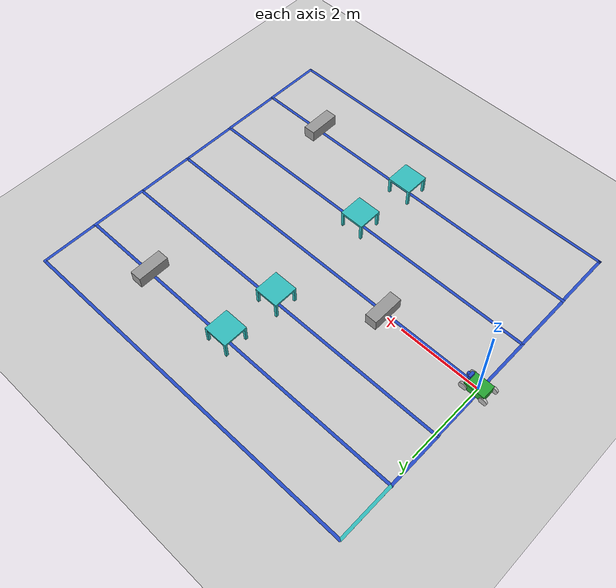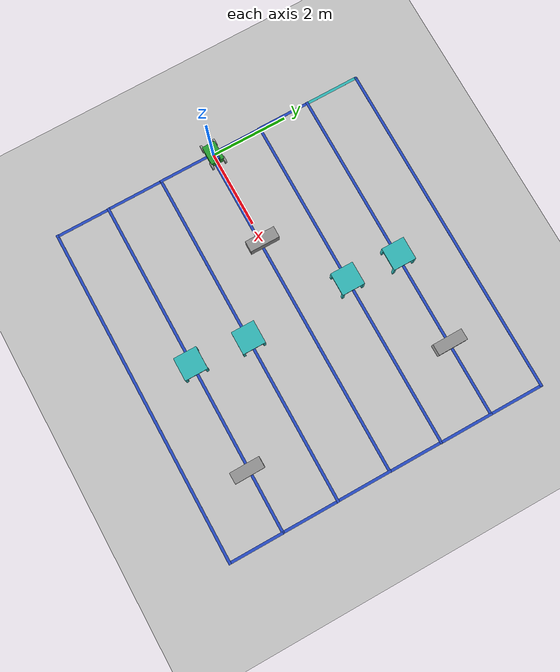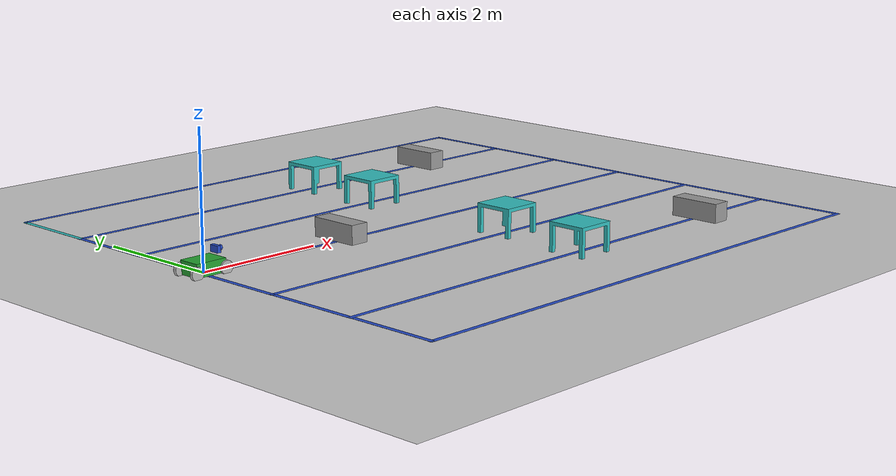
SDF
<sdf version="1.7">
 <world name="default">
  <light name="sun" type="directional">
   <pose>0 0 10 0 -0 0</pose>
   <diffuse>0.8 0.8 0.8 1</diffuse>
   <specular>0.2 0.2 0.2 1</specular>
   <attenuation>
    <range>1000</range>
    <constant>0.9</constant>
    <linear>0.01</linear>
    <quadratic>0.001</quadratic>
   </attenuation>
   <direction>-0.5 0.1 -0.9</direction>
   <spot><inner_angle>0</inner_angle><outer_angle>0</outer_angle><falloff>0</falloff></spot>
  </light>
  <model name="ground_plane">
   <static>1</static>
   <link name="link">
    <collision name="collision">
     <geometry><plane><normal>0 0 1</normal><size>100 100</size></plane></geometry>
     <surface>
      <contact><collide_bitmask>65535</collide_bitmask></contact>
      <friction><ode><mu>100</mu><mu2>50</mu2></ode></friction>
     </surface>
    </collision>
    <visual name="visual">
     <cast_shadows>0</cast_shadows>
     <geometry><plane><normal>0 0 1</normal><size>100 100</size></plane></geometry>
     <material>
      <script><uri>file://media/materials/scripts/gazebo.material</uri><name>Gazebo/Grey</name></script>
     </material>
    </visual>
   </link>
  </model>
  <gravity>0 0 -9.8</gravity>
  <magnetic_field>6e-06 2.3e-05 -4.2e-05</magnetic_field>
  <atmosphere type="adiabatic"/>
  <physics type="ode">
   <max_step_size>0.001</max_step_size>
   <real_time_factor>1</real_time_factor>
   <real_time_update_rate>1000</real_time_update_rate>
  </physics>
  <scene><ambient>0.4 0.4 0.4 1</ambient><background>0.7 0.7 0.7 1</background><shadows>1</shadows></scene>
  <spherical_coordinates>
   <surface_model>EARTH_WGS84</surface_model>
   <latitude_deg>0</latitude_deg>
   <longitude_deg>0</longitude_deg>
   <elevation>0</elevation>
   <heading_deg>0</heading_deg>
  </spherical_coordinates>
  <model name="greenguard">
   <link name="base_link">
    <inertial>
     <pose>0.002066 0 0.101653 0 -0 0</pose>
     <mass>12.1</mass>
     <inertia>
      <ixx>0.166842</ixx>
      <ixy>0</ixy>
      <ixz>-0.00495868</ixz>
      <iyy>0.300473</iyy>
      <iyz>0</iyz>
      <izz>0.379006</izz>
     </inertia>
    </inertial>
    <collision name="base_link_collision">
     <pose>0 0 0.1 0 -0 0</pose>
     <geometry><box><size>0.5 0.35 0.2</size></box></geometry>
    </collision>
    <collision name="base_link_fixed_joint_lump__camera_link_collision_1">
     <pose>0.25 0 0.3 0 -0 0</pose>
     <geometry><box><size>0.12 0.15 0.1</size></box></geometry>
    </collision>
    <visual name="base_link_visual">
     <pose>0 0 0.1 0 -0 0</pose>
     <geometry><box><size>0.5 0.35 0.2</size></box></geometry>
     <material>
      <script><name>Gazebo/Green</name><uri>file://media/materials/scripts/gazebo.material</uri></script>
     </material>
    </visual>
    <visual name="base_link_fixed_joint_lump__camera_link_visual_1">
     <pose>0.22 0 0.3 0 -0 0</pose>
     <geometry><box><size>0.06 0.15 0.1</size></box></geometry>
     <material>
      <script><name>Gazebo/Blue</name><uri>file://media/materials/scripts/gazebo.material</uri></script>
     </material>
    </visual>
    <visual name="base_link_fixed_joint_lump__camera_link_visual_2">
     <pose>0.28 0 0.3 3.14159 1.57079 3.14159</pose>
     <geometry><cylinder><length>0.06</length><radius>0.04</radius></cylinder></geometry>
     <material>
      <script><name>Gazebo/Blue</name><uri>file://media/materials/scripts/gazebo.material</uri></script>
     </material>
    </visual>
    <sensor name="guard_cam" type="depth">
     <update_rate>20</update_rate>
     <visualize>1</visualize>
     <camera name="cam">
      <horizontal_fov>1.39626</horizontal_fov>
      <image><width>640</width><height>480</height><format>B8G8R8</format></image>
      <clip><near>0.02</near><far>300</far></clip>
      <noise><type>gaussian</type><mean>0</mean><stddev>0.007</stddev></noise>
     </camera>
     <plugin name="camera_controller" filename="libgazebo_ros_camera.so">
      <frame_name>camera_link_optical</frame_name>
      <min_depth>0.1</min_depth>
      <max_depth>500</max_depth>
     </plugin>
     <pose>0.25 0 0.3 0 -0 0</pose>
    </sensor>
   </link>
   <joint name="front_left_wheel_joint" type="revolute">
    <pose relative_to="base_link">0.25 -0.175 0.066667 -1.57079 1.57079 3.14159</pose>
    <parent>base_link</parent>
    <child>front_left_wheel_link</child>
    <axis>
     <xyz>0 0 1</xyz>
     <limit><effort>100</effort><velocity>100</velocity><lower>-1e+16</lower><upper>1e+16</upper></limit>
     <dynamics><spring_reference>0</spring_reference><spring_stiffness>0</spring_stiffness></dynamics>
    </axis>
   </joint>
   <link name="front_left_wheel_link">
    <pose relative_to="front_left_wheel_joint">0 0 0 0 -0 0</pose>
    <inertial>
     <pose>0.025 0 0 3.14159 1.57079 3.14159</pose>
     <mass>1</mass>
     <inertia>
      <ixx>0.00270833</ixx>
      <ixy>0</ixy>
      <ixz>0</ixz>
      <iyy>0.00270833</iyy>
      <iyz>0</iyz>
      <izz>0.005</izz>
     </inertia>
    </inertial>
    <collision name="front_left_wheel_link_collision">
     <geometry><cylinder><length>0.05</length><radius>0.1</radius></cylinder></geometry>
    </collision>
    <visual name="front_left_wheel_link_visual">
     <geometry><cylinder><length>0.05</length><radius>0.1</radius></cylinder></geometry>
    </visual>
   </link>
   <joint name="front_right_wheel_joint" type="revolute">
    <pose relative_to="base_link">0.25 0.175 0.066667 -1.57079 1.57079 3.14159</pose>
    <parent>base_link</parent>
    <child>front_right_wheel_link</child>
    <axis>
     <xyz>0 0 1</xyz>
     <limit><effort>100</effort><velocity>100</velocity><lower>-1e+16</lower><upper>1e+16</upper></limit>
     <dynamics><spring_reference>0</spring_reference><spring_stiffness>0</spring_stiffness></dynamics>
    </axis>
   </joint>
   <link name="front_right_wheel_link">
    <pose relative_to="front_right_wheel_joint">0 0 0 0 -0 0</pose>
    <inertial>
     <pose>0.025 0 0 3.14159 1.57079 3.14159</pose>
     <mass>1</mass>
     <inertia>
      <ixx>0.00270833</ixx>
      <ixy>0</ixy>
      <ixz>0</ixz>
      <iyy>0.00270833</iyy>
      <iyz>0</iyz>
      <izz>0.005</izz>
     </inertia>
    </inertial>
    <collision name="front_right_wheel_link_collision">
     <geometry><cylinder><length>0.05</length><radius>0.1</radius></cylinder></geometry>
    </collision>
    <visual name="front_right_wheel_link_visual">
     <geometry><cylinder><length>0.05</length><radius>0.1</radius></cylinder></geometry>
    </visual>
   </link>
   <joint name="rear_left_wheel_joint" type="revolute">
    <pose relative_to="base_link">-0.25 -0.175 0.066667 -1.57079 1.57079 3.14159</pose>
    <parent>base_link</parent>
    <child>rear_left_wheel_link</child>
    <axis>
     <xyz>0 0 1</xyz>
     <limit><effort>100</effort><velocity>100</velocity><lower>-1e+16</lower><upper>1e+16</upper></limit>
     <dynamics><spring_reference>0</spring_reference><spring_stiffness>0</spring_stiffness></dynamics>
    </axis>
   </joint>
   <link name="rear_left_wheel_link">
    <pose relative_to="rear_left_wheel_joint">0 0 0 0 -0 0</pose>
    <inertial>
     <pose>0.025 0 0 3.14159 1.57079 3.14159</pose>
     <mass>1</mass>
     <inertia>
      <ixx>0.00270833</ixx>
      <ixy>0</ixy>
      <ixz>0</ixz>
      <iyy>0.00270833</iyy>
      <iyz>0</iyz>
      <izz>0.005</izz>
     </inertia>
    </inertial>
    <collision name="rear_left_wheel_link_collision">
     <geometry><cylinder><length>0.05</length><radius>0.1</radius></cylinder></geometry>
    </collision>
    <visual name="rear_left_wheel_link_visual">
     <geometry><cylinder><length>0.05</length><radius>0.1</radius></cylinder></geometry>
    </visual>
   </link>
   <joint name="rear_right_wheel_joint" type="revolute">
    <pose relative_to="base_link">-0.25 0.175 0.066667 -1.57079 1.57079 3.14159</pose>
    <parent>base_link</parent>
    <child>rear_right_wheel_link</child>
    <axis>
     <xyz>0 0 1</xyz>
     <limit><effort>100</effort><velocity>100</velocity><lower>-1e+16</lower><upper>1e+16</upper></limit>
     <dynamics><spring_reference>0</spring_reference><spring_stiffness>0</spring_stiffness></dynamics>
    </axis>
   </joint>
   <link name="rear_right_wheel_link">
    <pose relative_to="rear_right_wheel_joint">0 0 0 0 -0 0</pose>
    <inertial>
     <pose>0.025 0 0 3.14159 1.57079 3.14159</pose>
     <mass>1</mass>
     <inertia>
      <ixx>0.00270833</ixx>
      <ixy>0</ixy>
      <ixz>0</ixz>
      <iyy>0.00270833</iyy>
      <iyz>0</iyz>
      <izz>0.005</izz>
     </inertia>
    </inertial>
    <collision name="rear_right_wheel_link_collision">
     <geometry><cylinder><length>0.05</length><radius>0.1</radius></cylinder></geometry>
    </collision>
    <visual name="rear_right_wheel_link_visual">
     <geometry><cylinder><length>0.05</length><radius>0.1</radius></cylinder></geometry>
    </visual>
   </link>
   <plugin name="gazebo_ros_joint_state_publisher" filename="libgazebo_ros_joint_state_publisher.so">
    <update_rate>10</update_rate>
    <joint_name>front_right_wheel_joint</joint_name>
    <joint_name>front_left_wheel_joint</joint_name>
    <joint_name>rear_right_wheel_joint</joint_name>
    <joint_name>rear_left_wheel_joint</joint_name>
   </plugin>
   <plugin name="gazebo_ros_joint_pose_trajectory" filename="libgazebo_ros_joint_pose_trajectory.so">
    <update_rate>10</update_rate>
   </plugin>
   <static>0</static>
   <plugin name="skid_steer_drive" filename="libgazebo_ros_diff_drive.so">
    <ros><namespace>/greenguard</namespace></ros>
    <num_wheel_pairs>2</num_wheel_pairs>
    <left_joint>front_left_wheel_joint</left_joint>
    <right_joint>front_right_wheel_joint</right_joint>
    <left_joint>rear_left_wheel_joint</left_joint>
    <right_joint>rear_right_wheel_joint</right_joint>
    <wheel_separation>0.4</wheel_separation>
    <wheel_separation>0.4</wheel_separation>
    <wheel_diameter>0.2</wheel_diameter>
    <wheel_diameter>0.2</wheel_diameter>
    <max_wheel_torque>10</max_wheel_torque>
    <max_wheel_acceleration>1.0</max_wheel_acceleration>
    <publish_odom>1</publish_odom>
    <publish_odom_tf>1</publish_odom_tf>
    <publish_wheel_tf>1</publish_wheel_tf>
    <odometry_frame>odom</odometry_frame>
    <robot_base_frame>base_link</robot_base_frame>
   </plugin>
  </model>
  <model name="cizgi">
   <pose>4.20591 -0.108119 0 0 -0 0</pose>
   <link name="Wall_21">
    <collision name="Wall_21_Collision">
     <geometry><box><size>8.92 0.07 0.001</size></box></geometry>
     <pose>0 0 0.0005 0 -0 0</pose>
    </collision>
    <visual name="Wall_21_Visual">
     <pose>0 0 0.0005 0 -0 0</pose>
     <geometry><box><size>8.92 0.07 0.001</size></box></geometry>
     <material>
      <script><uri>file://media/materials/scripts/gazebo.material</uri><name>Gazebo/Blue</name></script>
      <ambient>1 1 1 1</ambient>
     </material>
     <meta><layer>0</layer></meta>
    </visual>
    <pose>0.1685 0.049 0 0 -0 0</pose>
   </link>
   <link name="Wall_23">
    <collision name="Wall_23_Collision">
     <geometry><box><size>1.42 0.07 0.001</size></box></geometry>
     <pose>0 0 0.0005 0 -0 0</pose>
    </collision>
    <visual name="Wall_23_Visual">
     <pose>0 0 0.0005 0 -0 0</pose>
     <geometry><box><size>1.42 0.07 0.001</size></box></geometry>
     <material>
      <script><uri>file://media/materials/scripts/gazebo.material</uri><name>Gazebo/Blue</name></script>
      <ambient>1 1 1 1</ambient>
     </material>
     <meta><layer>0</layer></meta>
    </visual>
    <pose>4.6125 2.135 0 0 -0 1.5708</pose>
   </link>
   <link name="Wall_25">
    <collision name="Wall_25_Collision">
     <geometry><box><size>1.42 0.07 0.001</size></box></geometry>
     <pose>0 0 0.0005 0 -0 0</pose>
    </collision>
    <visual name="Wall_25_Visual">
     <pose>0 0 0.0005 0 -0 0</pose>
     <geometry><box><size>1.42 0.07 0.001</size></box></geometry>
     <material>
      <script><uri>file://media/materials/scripts/gazebo.material</uri><name>Gazebo/Blue</name></script>
      <ambient>1 1 1 1</ambient>
     </material>
     <meta><layer>0</layer></meta>
    </visual>
    <pose>4.60833 -2.05702 0 0 -0 -1.5708</pose>
   </link>
   <link name="Wall_27">
    <collision name="Wall_27_Collision">
     <geometry><box><size>1.42 0.07 0.001</size></box></geometry>
     <pose>0 0 0.0005 0 -0 0</pose>
    </collision>
    <visual name="Wall_27_Visual">
     <pose>0 0 0.0005 0 -0 0</pose>
     <geometry><box><size>1.42 0.07 0.001</size></box></geometry>
     <material>
      <script><uri>file://media/materials/scripts/gazebo.material</uri><name>Gazebo/Blue</name></script>
      <ambient>1 1 1 1</ambient>
     </material>
     <meta><layer>0</layer></meta>
    </visual>
    <pose>4.61233 -3.50883 0 0 -0 -1.5708</pose>
   </link>
   <link name="Wall_29">
    <collision name="Wall_29_Collision">
     <geometry><box><size>1.42 0.07 0.001</size></box></geometry>
     <pose>0 0 0.0005 0 -0 0</pose>
    </collision>
    <visual name="Wall_29_Visual">
     <pose>0 0 0.0005 0 -0 0</pose>
     <geometry><box><size>1.42 0.07 0.001</size></box></geometry>
     <material>
      <script><uri>file://media/materials/scripts/gazebo.material</uri><name>Gazebo/Blue</name></script>
      <ambient>1 1 1 1</ambient>
     </material>
     <meta><layer>0</layer></meta>
    </visual>
    <pose>4.6125 3.527 0 0 -0 -1.5708</pose>
   </link>
   <link name="Wall_31">
    <collision name="Wall_31_Collision">
     <geometry><box><size>1.42 0.07 0.001</size></box></geometry>
     <pose>0 0 0.0005 0 -0 0</pose>
    </collision>
    <visual name="Wall_31_Visual">
     <pose>0 0 0.0005 0 -0 0</pose>
     <geometry><box><size>1.42 0.07 0.001</size></box></geometry>
     <material>
      <script><uri>file://media/materials/scripts/gazebo.material</uri><name>Gazebo/Blue</name></script>
      <ambient>1 1 1 1</ambient>
     </material>
     <meta><layer>0</layer></meta>
    </visual>
    <pose>4.6075 0.77 0 0 -0 -1.5708</pose>
   </link>
   <link name="Wall_33">
    <collision name="Wall_33_Collision">
     <geometry><box><size>1.42 0.07 0.001</size></box></geometry>
     <pose>0 0 0.0005 0 -0 0</pose>
    </collision>
    <visual name="Wall_33_Visual">
     <pose>0 0 0.0005 0 -0 0</pose>
     <geometry><box><size>1.42 0.07 0.001</size></box></geometry>
     <material>
      <script><uri>file://media/materials/scripts/gazebo.material</uri><name>Gazebo/Blue</name></script>
      <ambient>1 1 1 1</ambient>
     </material>
     <meta><layer>0</layer></meta>
    </visual>
    <pose>4.6035 -0.621 0 0 -0 -1.5708</pose>
   </link>
   <link name="Wall_35">
    <collision name="Wall_35_Collision">
     <geometry><box><size>8.92 0.07 0.001</size></box></geometry>
     <pose>0 0 0.0005 0 -0 0</pose>
    </collision>
    <visual name="Wall_35_Visual">
     <pose>0 0 0.0005 0 -0 0</pose>
     <geometry><box><size>8.92 0.07 0.001</size></box></geometry>
     <material>
      <script><uri>file://media/materials/scripts/gazebo.material</uri><name>Gazebo/Blue</name></script>
      <ambient>1 1 1 1</ambient>
     </material>
     <meta><layer>0</layer></meta>
    </visual>
    <pose>0.1775 1.445 0 0 -0 0</pose>
   </link>
   <link name="Wall_37">
    <collision name="Wall_37_Collision">
     <geometry><box><size>8.92 0.07 0.001</size></box></geometry>
     <pose>0 0 0.0005 0 -0 0</pose>
    </collision>
    <visual name="Wall_37_Visual">
     <pose>0 0 0.0005 0 -0 0</pose>
     <geometry><box><size>8.92 0.07 0.001</size></box></geometry>
     <material>
      <script><uri>file://media/materials/scripts/gazebo.material</uri><name>Gazebo/Blue</name></script>
      <ambient>1 1 1 1</ambient>
     </material>
     <meta><layer>0</layer></meta>
    </visual>
    <pose>0.1805 -1.341 0 0 -0 0</pose>
   </link>
   <link name="Wall_39">
    <collision name="Wall_39_Collision">
     <geometry><box><size>8.92 0.07 0.001</size></box></geometry>
     <pose>0 0 0.0005 0 -0 0</pose>
    </collision>
    <visual name="Wall_39_Visual">
     <pose>0 0 0.0005 0 -0 0</pose>
     <geometry><box><size>8.92 0.07 0.001</size></box></geometry>
     <material>
      <script><uri>file://media/materials/scripts/gazebo.material</uri><name>Gazebo/Blue</name></script>
      <ambient>1 1 1 1</ambient>
     </material>
     <meta><layer>0</layer></meta>
    </visual>
    <pose>0.187168 -2.80422 0 0 -0 0</pose>
   </link>
   <link name="Wall_41">
    <collision name="Wall_41_Collision">
     <geometry><box><size>8.92 0.07 0.001</size></box></geometry>
     <pose>0 0 0.0005 0 -0 0</pose>
    </collision>
    <visual name="Wall_41_Visual">
     <pose>0 0 0.0005 0 -0 0</pose>
     <geometry><box><size>8.92 0.07 0.001</size></box></geometry>
     <material>
      <script><uri>file://media/materials/scripts/gazebo.material</uri><name>Gazebo/Blue</name></script>
      <ambient>1 1 1 1</ambient>
     </material>
     <meta><layer>0</layer></meta>
    </visual>
    <pose>0.1875 -4.202 0 0 -0 0</pose>
   </link>
   <link name="Wall_43">
    <collision name="Wall_43_Collision">
     <geometry><box><size>8.92 0.07 0.001</size></box></geometry>
     <pose>0 0 0.0005 0 -0 0</pose>
    </collision>
    <visual name="Wall_43_Visual">
     <pose>0 0 0.0005 0 -0 0</pose>
     <geometry><box><size>8.92 0.07 0.001</size></box></geometry>
     <material>
      <script><uri>file://media/materials/scripts/gazebo.material</uri><name>Gazebo/Blue</name></script>
      <ambient>1 1 1 1</ambient>
     </material>
     <meta><layer>0</layer></meta>
    </visual>
    <pose>0.1715 4.202 0 0 -0 0</pose>
   </link>
   <link name="Wall_45">
    <collision name="Wall_45_Collision">
     <geometry><box><size>8.92 0.07 0.001</size></box></geometry>
     <pose>0 0 0.0005 0 -0 0</pose>
    </collision>
    <visual name="Wall_45_Visual">
     <pose>0 0 0.0005 0 -0 0</pose>
     <geometry><box><size>8.92 0.07 0.001</size></box></geometry>
     <material>
      <script><uri>file://media/materials/scripts/gazebo.material</uri><name>Gazebo/Blue</name></script>
      <ambient>1 1 1 1</ambient>
     </material>
     <meta><layer>0</layer></meta>
    </visual>
    <pose>0.1505 2.804 0 0 -0 0</pose>
   </link>
   <link name="Wall_47">
    <collision name="Wall_47_Collision">
     <geometry><box><size>1.42 0.07 0.001</size></box></geometry>
     <pose>0 0 0.0005 0 -0 0</pose>
    </collision>
    <visual name="Wall_47_Visual">
     <pose>0 0 0.0005 0 -0 0</pose>
     <geometry><box><size>1.42 0.07 0.001</size></box></geometry>
     <material>
      <script><uri>file://media/materials/scripts/gazebo.material</uri><name>Gazebo/Blue</name></script>
      <ambient>1 1 1 1</ambient>
     </material>
     <meta><layer>0</layer></meta>
    </visual>
    <pose>-4.23105 -3.508 0 0 -0 1.5708</pose>
   </link>
   <link name="Wall_49">
    <collision name="Wall_49_Collision">
     <geometry><box><size>1.42 0.07 0.001</size></box></geometry>
     <pose>0 0 0.0005 0 -0 0</pose>
    </collision>
    <visual name="Wall_49_Visual">
     <pose>0 0 0.0005 0 -0 0</pose>
     <geometry><box><size>1.42 0.07 0.001</size></box></geometry>
     <material>
      <script><uri>file://media/materials/scripts/gazebo.material</uri><name>Gazebo/Blue</name></script>
      <ambient>1 1 1 1</ambient>
     </material>
     <meta><layer>0</layer></meta>
    </visual>
    <pose>-4.23971 -2.0589 0 0 -0 1.5708</pose>
   </link>
   <link name="Wall_51">
    <collision name="Wall_51_Collision">
     <geometry><box><size>1.42 0.07 0.001</size></box></geometry>
     <pose>0 0 0.0005 0 -0 0</pose>
    </collision>
    <visual name="Wall_51_Visual">
     <pose>0 0 0.0005 0 -0 0</pose>
     <geometry><box><size>1.42 0.07 0.001</size></box></geometry>
     <material>
      <script><uri>file://media/materials/scripts/gazebo.material</uri><name>Gazebo/Blue</name></script>
      <ambient>1 1 1 1</ambient>
     </material>
     <meta><layer>0</layer></meta>
    </visual>
    <pose>-4.2455 -0.659 0 0 -0 1.5708</pose>
   </link>
   <link name="Wall_53">
    <collision name="Wall_53_Collision">
     <geometry><box><size>1.42 0.07 0.001</size></box></geometry>
     <pose>0 0 0.0005 0 -0 0</pose>
    </collision>
    <visual name="Wall_53_Visual">
     <pose>0 0 0.0005 0 -0 0</pose>
     <geometry><box><size>1.42 0.07 0.001</size></box></geometry>
     <material>
      <script><uri>file://media/materials/scripts/gazebo.material</uri><name>Gazebo/Blue</name></script>
      <ambient>1 1 1 1</ambient>
     </material>
     <meta><layer>0</layer></meta>
    </visual>
    <pose>-4.2565 0.749 0 0 -0 1.5708</pose>
   </link>
   <link name="Wall_55">
    <collision name="Wall_55_Collision">
     <geometry><box><size>1.42031 0.07 0.001</size></box></geometry>
     <pose>0 0 0.0005 0 -0 0</pose>
    </collision>
    <visual name="Wall_55_Visual">
     <pose>0 0 0.0005 0 -0 0</pose>
     <geometry><box><size>1.42031 0.07 0.001</size></box></geometry>
     <material>
      <script><uri>file://media/materials/scripts/gazebo.material</uri><name>Gazebo/Blue</name></script>
      <ambient>1 1 1 1</ambient>
     </material>
     <meta><layer>0</layer></meta>
    </visual>
    <pose>-4.2685 2.097 0 0 -0 1.5708</pose>
   </link>
   <link name="Wall_57">
    <collision name="Wall_57_Collision">
     <geometry><box><size>1.42 0.07 0.001</size></box></geometry>
     <pose>0 0 0.0005 0 -0 0</pose>
    </collision>
    <visual name="Wall_57_Visual">
     <pose>0 0 0.0005 0 -0 0</pose>
     <geometry><box><size>1.42 0.07 0.001</size></box></geometry>
     <material>
      <script><uri>file://media/materials/scripts/gazebo.material</uri><name>Gazebo/Turquoise</name></script>
      <ambient>1 1 1 1</ambient>
     </material>
     <meta><layer>0</layer></meta>
    </visual>
    <pose>-4.2675 3.505 0 0 -0 1.5708</pose>
   </link>
   <static>1</static>
  </model>
  <model name="table">
   <link name="link_0">
    <inertial>
     <mass>1</mass>
     <inertia>
      <ixx>0.166667</ixx>
      <ixy>0</ixy>
      <ixz>0</ixz>
      <iyy>0.166667</iyy>
      <iyz>0</iyz>
      <izz>0.166667</izz>
     </inertia>
    </inertial>
    <pose>5e-06 3e-06 0 0 -0 0</pose>
    <visual name="visual">
     <geometry>
      <mesh>
       <uri>/home/neraiv/galactic_ws/src/greenguard/greenguard_description/worlds/table.stl</uri>
       <scale>0.6 0.6 0.6</scale>
      </mesh>
     </geometry>
     <material>
      <lighting>1</lighting>
      <script><uri>file://media/materials/scripts/gazebo.material</uri><name>Gazebo/Turquoise</name></script>
      <shader type="pixel"/>
     </material>
    </visual>
    <collision name="collision">
     <geometry>
      <mesh>
       <uri>/home/neraiv/galactic_ws/src/greenguard/greenguard_description/worlds/table.stl</uri>
       <scale>0.6 0.6 0.6</scale>
      </mesh>
     </geometry>
     <surface>
      <friction>
       <ode><mu>1</mu><mu2>1</mu2><fdir1>0 0 0</fdir1><slip1>0</slip1><slip2>0</slip2></ode>
       <torsional>
        <coefficient>1</coefficient>
        <patch_radius>0</patch_radius>
        <surface_radius>0</surface_radius>
        <use_patch_radius>1</use_patch_radius>
        <ode><slip>0</slip></ode>
       </torsional>
      </friction>
      <bounce><restitution_coefficient>0</restitution_coefficient><threshold>1e+06</threshold></bounce>
      <contact>
       <collide_without_contact>0</collide_without_contact>
       <collide_without_contact_bitmask>1</collide_without_contact_bitmask>
       <collide_bitmask>1</collide_bitmask>
       <ode>
        <soft_cfm>0</soft_cfm>
        <soft_erp>0.2</soft_erp>
        <kp>1e+13</kp>
        <kd>1</kd>
        <max_vel>0.01</max_vel>
        <min_depth>0</min_depth>
       </ode>
       <bullet>
        <split_impulse>1</split_impulse>
        <split_impulse_penetration_threshold>-0.01</split_impulse_penetration_threshold>
        <soft_cfm>0</soft_cfm>
        <soft_erp>0.2</soft_erp>
        <kp>1e+13</kp>
        <kd>1</kd>
       </bullet>
      </contact>
     </surface>
    </collision>
   </link>
   <static>0</static>
   <pose>4.46328 2.65883 -2e-06 -1.4e-05 8e-06 -1e-06</pose>
  </model>
  <model name="table_0">
   <link name="link_0">
    <inertial>
     <mass>1</mass>
     <inertia>
      <ixx>0.166667</ixx>
      <ixy>0</ixy>
      <ixz>0</ixz>
      <iyy>0.166667</iyy>
      <iyz>0</iyz>
      <izz>0.166667</izz>
     </inertia>
    </inertial>
    <pose>5e-06 3e-06 0 0 -0 0</pose>
    <visual name="visual">
     <geometry>
      <mesh>
       <uri>/home/neraiv/galactic_ws/src/greenguard/greenguard_description/worlds/table.stl</uri>
       <scale>0.6 0.6 0.6</scale>
      </mesh>
     </geometry>
     <material>
      <lighting>1</lighting>
      <script><uri>file://media/materials/scripts/gazebo.material</uri><name>Gazebo/Turquoise</name></script>
      <shader type="pixel"/>
     </material>
    </visual>
    <collision name="collision">
     <geometry>
      <mesh>
       <uri>/home/neraiv/galactic_ws/src/greenguard/greenguard_description/worlds/table.stl</uri>
       <scale>0.6 0.6 0.6</scale>
      </mesh>
     </geometry>
     <surface>
      <friction>
       <ode><mu>1</mu><mu2>1</mu2><fdir1>0 0 0</fdir1><slip1>0</slip1><slip2>0</slip2></ode>
       <torsional>
        <coefficient>1</coefficient>
        <patch_radius>0</patch_radius>
        <surface_radius>0</surface_radius>
        <use_patch_radius>1</use_patch_radius>
        <ode><slip>0</slip></ode>
       </torsional>
      </friction>
      <bounce><restitution_coefficient>0</restitution_coefficient><threshold>1e+06</threshold></bounce>
      <contact>
       <collide_without_contact>0</collide_without_contact>
       <collide_without_contact_bitmask>1</collide_without_contact_bitmask>
       <collide_bitmask>1</collide_bitmask>
       <ode>
        <soft_cfm>0</soft_cfm>
        <soft_erp>0.2</soft_erp>
        <kp>1e+13</kp>
        <kd>1</kd>
        <max_vel>0.01</max_vel>
        <min_depth>0</min_depth>
       </ode>
       <bullet>
        <split_impulse>1</split_impulse>
        <split_impulse_penetration_threshold>-0.01</split_impulse_penetration_threshold>
        <soft_cfm>0</soft_cfm>
        <soft_erp>0.2</soft_erp>
        <kp>1e+13</kp>
        <kd>1</kd>
       </bullet>
      </contact>
     </surface>
    </collision>
   </link>
   <static>0</static>
   <pose>4.39947 1.29161 1.2e-05 2.1e-05 1.4e-05 -1e-06</pose>
  </model>
  <model name="table_1">
   <link name="link_0">
    <inertial>
     <mass>1</mass>
     <inertia>
      <ixx>0.166667</ixx>
      <ixy>0</ixy>
      <ixz>0</ixz>
      <iyy>0.166667</iyy>
      <iyz>0</iyz>
      <izz>0.166667</izz>
     </inertia>
    </inertial>
    <pose>5e-06 3e-06 0 0 -0 0</pose>
    <visual name="visual">
     <geometry>
      <mesh>
       <uri>/home/neraiv/galactic_ws/src/greenguard/greenguard_description/worlds/table.stl</uri>
       <scale>0.6 0.6 0.6</scale>
      </mesh>
     </geometry>
     <material>
      <lighting>1</lighting>
      <script><uri>file://media/materials/scripts/gazebo.material</uri><name>Gazebo/Turquoise</name></script>
      <shader type="pixel"/>
     </material>
    </visual>
    <collision name="collision">
     <geometry>
      <mesh>
       <uri>/home/neraiv/galactic_ws/src/greenguard/greenguard_description/worlds/table.stl</uri>
       <scale>0.6 0.6 0.6</scale>
      </mesh>
     </geometry>
     <surface>
      <friction>
       <ode><mu>1</mu><mu2>1</mu2><fdir1>0 0 0</fdir1><slip1>0</slip1><slip2>0</slip2></ode>
       <torsional>
        <coefficient>1</coefficient>
        <patch_radius>0</patch_radius>
        <surface_radius>0</surface_radius>
        <use_patch_radius>1</use_patch_radius>
        <ode><slip>0</slip></ode>
       </torsional>
      </friction>
      <bounce><restitution_coefficient>0</restitution_coefficient><threshold>1e+06</threshold></bounce>
      <contact>
       <collide_without_contact>0</collide_without_contact>
       <collide_without_contact_bitmask>1</collide_without_contact_bitmask>
       <collide_bitmask>1</collide_bitmask>
       <ode>
        <soft_cfm>0</soft_cfm>
        <soft_erp>0.2</soft_erp>
        <kp>1e+13</kp>
        <kd>1</kd>
        <max_vel>0.01</max_vel>
        <min_depth>0</min_depth>
       </ode>
       <bullet>
        <split_impulse>1</split_impulse>
        <split_impulse_penetration_threshold>-0.01</split_impulse_penetration_threshold>
        <soft_cfm>0</soft_cfm>
        <soft_erp>0.2</soft_erp>
        <kp>1e+13</kp>
        <kd>1</kd>
       </bullet>
      </contact>
     </surface>
    </collision>
   </link>
   <static>0</static>
   <pose>4.49247 -1.44264 1.2e-05 2.1e-05 1.4e-05 -1e-06</pose>
  </model>
  <model name="table_2">
   <link name="link_0">
    <inertial>
     <mass>1</mass>
     <inertia>
      <ixx>0.166667</ixx>
      <ixy>0</ixy>
      <ixz>0</ixz>
      <iyy>0.166667</iyy>
      <iyz>0</iyz>
      <izz>0.166667</izz>
     </inertia>
    </inertial>
    <pose>5e-06 3e-06 0 0 -0 0</pose>
    <visual name="visual">
     <geometry>
      <mesh>
       <uri>/home/neraiv/galactic_ws/src/greenguard/greenguard_description/worlds/table.stl</uri>
       <scale>0.6 0.6 0.6</scale>
      </mesh>
     </geometry>
     <material>
      <lighting>1</lighting>
      <script><uri>file://media/materials/scripts/gazebo.material</uri><name>Gazebo/Turquoise</name></script>
      <shader type="pixel"/>
     </material>
    </visual>
    <collision name="collision">
     <geometry>
      <mesh>
       <uri>/home/neraiv/galactic_ws/src/greenguard/greenguard_description/worlds/table.stl</uri>
       <scale>0.6 0.6 0.6</scale>
      </mesh>
     </geometry>
     <surface>
      <friction>
       <ode><mu>1</mu><mu2>1</mu2><fdir1>0 0 0</fdir1><slip1>0</slip1><slip2>0</slip2></ode>
       <torsional>
        <coefficient>1</coefficient>
        <patch_radius>0</patch_radius>
        <surface_radius>0</surface_radius>
        <use_patch_radius>1</use_patch_radius>
        <ode><slip>0</slip></ode>
       </torsional>
      </friction>
      <bounce><restitution_coefficient>0</restitution_coefficient><threshold>1e+06</threshold></bounce>
      <contact>
       <collide_without_contact>0</collide_without_contact>
       <collide_without_contact_bitmask>1</collide_without_contact_bitmask>
       <collide_bitmask>1</collide_bitmask>
       <ode>
        <soft_cfm>0</soft_cfm>
        <soft_erp>0.2</soft_erp>
        <kp>1e+13</kp>
        <kd>1</kd>
        <max_vel>0.01</max_vel>
        <min_depth>0</min_depth>
       </ode>
       <bullet>
        <split_impulse>1</split_impulse>
        <split_impulse_penetration_threshold>-0.01</split_impulse_penetration_threshold>
        <soft_cfm>0</soft_cfm>
        <soft_erp>0.2</soft_erp>
        <kp>1e+13</kp>
        <kd>1</kd>
       </bullet>
      </contact>
     </surface>
    </collision>
   </link>
   <static>0</static>
   <pose>4.37712 -2.91733 1.2e-05 2.1e-05 1.4e-05 0</pose>
  </model>
  <model name="engel">
   <link name="link_0">
    <inertial>
     <mass>0.0664996</mass>
     <inertia>
      <ixx>0.00384233</ixx>
      <ixy>0</ixy>
      <ixz>0</ixz>
      <iyy>0.000944879</iyy>
      <iyz>0</iyz>
      <izz>0.00384725</izz>
     </inertia>
    </inertial>
    <pose>3e-06 -4e-06 0 0 -0 0</pose>
    <visual name="visual">
     <geometry><box><size>0.29274 0.780095 0.29122</size></box></geometry>
     <material>
      <lighting>1</lighting>
      <script><uri>file://media/materials/scripts/gazebo.material</uri><name>Gazebo/Grey</name></script>
      <shader type="pixel"/>
     </material>
    </visual>
    <collision name="collision">
     <geometry><box><size>0.29274 0.780095 0.29122</size></box></geometry>
     <surface>
      <friction>
       <ode><mu>1</mu><mu2>1</mu2><fdir1>0 0 0</fdir1><slip1>0</slip1><slip2>0</slip2></ode>
       <torsional>
        <coefficient>1</coefficient>
        <patch_radius>0</patch_radius>
        <surface_radius>0</surface_radius>
        <use_patch_radius>1</use_patch_radius>
        <ode><slip>0</slip></ode>
       </torsional>
      </friction>
      <bounce><restitution_coefficient>0</restitution_coefficient><threshold>1e+06</threshold></bounce>
      <contact>
       <collide_without_contact>0</collide_without_contact>
       <collide_without_contact_bitmask>1</collide_without_contact_bitmask>
       <collide_bitmask>1</collide_bitmask>
       <ode>
        <soft_cfm>0</soft_cfm>
        <soft_erp>0.2</soft_erp>
        <kp>1e+13</kp>
        <kd>1</kd>
        <max_vel>0.01</max_vel>
        <min_depth>0</min_depth>
       </ode>
       <bullet>
        <split_impulse>1</split_impulse>
        <split_impulse_penetration_threshold>-0.01</split_impulse_penetration_threshold>
        <soft_cfm>0</soft_cfm>
        <soft_erp>0.2</soft_erp>
        <kp>1e+13</kp>
        <kd>1</kd>
       </bullet>
      </contact>
     </surface>
    </collision>
   </link>
   <static>0</static>
   <pose>2.53125 -0.001995 0.146555 -0.002427 -1.9e-05 -0.003157</pose>
  </model>
  <model name="engel_0">
   <link name="link_0">
    <inertial>
     <mass>0.0664996</mass>
     <inertia>
      <ixx>0.00384233</ixx>
      <ixy>0</ixy>
      <ixz>0</ixz>
      <iyy>0.000944879</iyy>
      <iyz>0</iyz>
      <izz>0.00384725</izz>
     </inertia>
    </inertial>
    <pose>3e-06 -4e-06 0 0 -0 0</pose>
    <visual name="visual">
     <geometry><box><size>0.29274 0.780095 0.29122</size></box></geometry>
     <material>
      <lighting>1</lighting>
      <script><uri>file://media/materials/scripts/gazebo.material</uri><name>Gazebo/Grey</name></script>
      <shader type="pixel"/>
     </material>
    </visual>
    <collision name="collision">
     <geometry><box><size>0.29274 0.780095 0.29122</size></box></geometry>
     <surface>
      <friction>
       <ode><mu>1</mu><mu2>1</mu2><fdir1>0 0 0</fdir1><slip1>0</slip1><slip2>0</slip2></ode>
       <torsional>
        <coefficient>1</coefficient>
        <patch_radius>0</patch_radius>
        <surface_radius>0</surface_radius>
        <use_patch_radius>1</use_patch_radius>
        <ode><slip>0</slip></ode>
       </torsional>
      </friction>
      <bounce><restitution_coefficient>0</restitution_coefficient><threshold>1e+06</threshold></bounce>
      <contact>
       <collide_without_contact>0</collide_without_contact>
       <collide_without_contact_bitmask>1</collide_without_contact_bitmask>
       <collide_bitmask>1</collide_bitmask>
       <ode>
        <soft_cfm>0</soft_cfm>
        <soft_erp>0.2</soft_erp>
        <kp>1e+13</kp>
        <kd>1</kd>
        <max_vel>0.01</max_vel>
        <min_depth>0</min_depth>
       </ode>
       <bullet>
        <split_impulse>1</split_impulse>
        <split_impulse_penetration_threshold>-0.01</split_impulse_penetration_threshold>
        <soft_cfm>0</soft_cfm>
        <soft_erp>0.2</soft_erp>
        <kp>1e+13</kp>
        <kd>1</kd>
       </bullet>
      </contact>
     </surface>
    </collision>
   </link>
   <static>0</static>
   <pose>6.88278 2.67869 0.146609 8e-05 -1.8e-05 0.006821</pose>
  </model>
  <model name="engel_1">
   <link name="link_0">
    <inertial>
     <mass>0.0664996</mass>
     <inertia>
      <ixx>0.00384233</ixx>
      <ixy>0</ixy>
      <ixz>0</ixz>
      <iyy>0.000944879</iyy>
      <iyz>0</iyz>
      <izz>0.00384725</izz>
     </inertia>
    </inertial>
    <pose>3e-06 -4e-06 0 0 -0 0</pose>
    <visual name="visual">
     <geometry><box><size>0.29274 0.780095 0.29122</size></box></geometry>
     <material>
      <lighting>1</lighting>
      <script><uri>file://media/materials/scripts/gazebo.material</uri><name>Gazebo/Grey</name></script>
      <shader type="pixel"/>
     </material>
    </visual>
    <collision name="collision">
     <geometry><box><size>0.29274 0.780095 0.29122</size></box></geometry>
     <surface>
      <friction>
       <ode><mu>1</mu><mu2>1</mu2><fdir1>0 0 0</fdir1><slip1>0</slip1><slip2>0</slip2></ode>
       <torsional>
        <coefficient>1</coefficient>
        <patch_radius>0</patch_radius>
        <surface_radius>0</surface_radius>
        <use_patch_radius>1</use_patch_radius>
        <ode><slip>0</slip></ode>
       </torsional>
      </friction>
      <bounce><restitution_coefficient>0</restitution_coefficient><threshold>1e+06</threshold></bounce>
      <contact>
       <collide_without_contact>0</collide_without_contact>
       <collide_without_contact_bitmask>1</collide_without_contact_bitmask>
       <collide_bitmask>1</collide_bitmask>
       <ode>
        <soft_cfm>0</soft_cfm>
        <soft_erp>0.2</soft_erp>
        <kp>1e+13</kp>
        <kd>1</kd>
        <max_vel>0.01</max_vel>
        <min_depth>0</min_depth>
       </ode>
       <bullet>
        <split_impulse>1</split_impulse>
        <split_impulse_penetration_threshold>-0.01</split_impulse_penetration_threshold>
        <soft_cfm>0</soft_cfm>
        <soft_erp>0.2</soft_erp>
        <kp>1e+13</kp>
        <kd>1</kd>
       </bullet>
      </contact>
     </surface>
    </collision>
   </link>
   <static>0</static>
   <pose>7.16998 -2.94299 0.146608 0.001026 9e-06 0.011165</pose>
  </model>
 </world>
</sdf>
